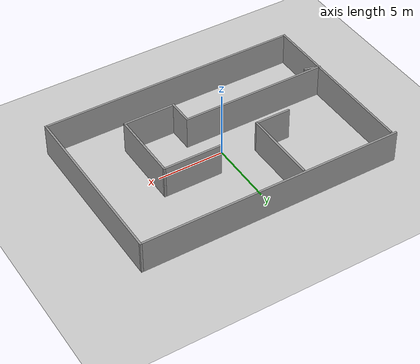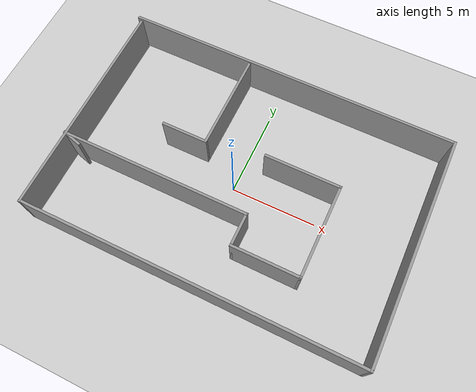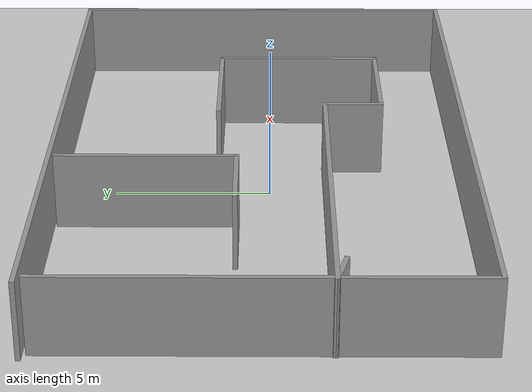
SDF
<sdf version="1.7">
 <world name="default">
  <light name="sun" type="directional">
   <pose>0 0 10 0 -0 0</pose>
   <diffuse>0.8 0.8 0.8 1</diffuse>
   <specular>0.2 0.2 0.2 1</specular>
   <attenuation>
    <range>1000</range>
    <constant>0.9</constant>
    <linear>0.01</linear>
    <quadratic>0.001</quadratic>
   </attenuation>
   <direction>-0.5 0.1 -0.9</direction>
   <spot><inner_angle>0</inner_angle><outer_angle>0</outer_angle><falloff>0</falloff></spot>
  </light>
  <model name="ground_plane">
   <static>1</static>
   <link name="link">
    <collision name="collision">
     <geometry><plane><normal>0 0 1</normal><size>100 100</size></plane></geometry>
     <surface>
      <contact><collide_bitmask>65535</collide_bitmask></contact>
      <friction><ode><mu>100</mu><mu2>50</mu2></ode></friction>
     </surface>
    </collision>
    <visual name="visual">
     <cast_shadows>0</cast_shadows>
     <geometry><plane><normal>0 0 1</normal><size>100 100</size></plane></geometry>
     <material>
      <script><uri>file://media/materials/scripts/gazebo.material</uri><name>Gazebo/Grey</name></script>
     </material>
    </visual>
   </link>
  </model>
  <gravity>0 0 -9.8</gravity>
  <magnetic_field>6e-06 2.3e-05 -4.2e-05</magnetic_field>
  <atmosphere type="adiabatic"/>
  <physics type="ode">
   <max_step_size>0.001</max_step_size>
   <real_time_factor>1</real_time_factor>
   <real_time_update_rate>1000</real_time_update_rate>
  </physics>
  <scene><ambient>0.4 0.4 0.4 1</ambient><background>0.7 0.7 0.7 1</background><shadows>1</shadows></scene>
  <audio><device>default</device></audio>
  <spherical_coordinates>
   <surface_model>EARTH_WGS84</surface_model>
   <latitude_deg>0</latitude_deg>
   <longitude_deg>0</longitude_deg>
   <elevation>0</elevation>
   <heading_deg>0</heading_deg>
  </spherical_coordinates>
  <model name="wall">
   <pose>0.291664 0.291965 0 0 -0 0</pose>
   <link name="Wall_10">
    <collision name="Wall_10_Collision">
     <geometry><box><size>20 0.15 2.5</size></box></geometry>
     <pose>0 0 1.25 0 -0 0</pose>
    </collision>
    <visual name="Wall_10_Visual">
     <pose>0 0 1.25 0 -0 0</pose>
     <geometry><box><size>20 0.15 2.5</size></box></geometry>
     <material>
      <script><uri>file://media/materials/scripts/gazebo.material</uri><name>Gazebo/Grey</name></script>
      <ambient>1 1 1 1</ambient>
     </material>
     <meta><layer>0</layer></meta>
    </visual>
    <pose>-0 6.55 0 0 -0 3.14159</pose>
   </link>
   <link name="Wall_12">
    <collision name="Wall_12_Collision">
     <geometry><box><size>5.75 0.15 2.5</size></box></geometry>
     <pose>0 0 1.25 0 -0 0</pose>
    </collision>
    <visual name="Wall_12_Visual">
     <pose>0 0 1.25 0 -0 0</pose>
     <geometry><box><size>5.75 0.15 2.5</size></box></geometry>
     <material>
      <script><uri>file://media/materials/scripts/gazebo.material</uri><name>Gazebo/Grey</name></script>
      <ambient>1 1 1 1</ambient>
     </material>
     <meta><layer>0</layer></meta>
    </visual>
    <pose>-2.46256 3.53969 0 0 -0 -1.5708</pose>
   </link>
   <link name="Wall_13">
    <collision name="Wall_13_Collision">
     <geometry><box><size>2.75 0.15 2.5</size></box></geometry>
     <pose>0 0 1.25 0 -0 0</pose>
    </collision>
    <visual name="Wall_13_Visual">
     <pose>0 0 1.25 0 -0 0</pose>
     <geometry><box><size>2.75 0.15 2.5</size></box></geometry>
     <material>
      <script><uri>file://media/materials/scripts/gazebo.material</uri><name>Gazebo/Grey</name></script>
      <ambient>1 1 1 1</ambient>
     </material>
     <meta><layer>0</layer></meta>
    </visual>
    <pose>-3.76256 0.73969 0 0 -0 3.14159</pose>
   </link>
   <link name="Wall_15">
    <collision name="Wall_15_Collision">
     <geometry><box><size>1.25 0.15 2.5</size></box></geometry>
     <pose>0 0 1.25 0 -0 0</pose>
    </collision>
    <visual name="Wall_15_Visual">
     <pose>0 0 1.25 0 -0 0</pose>
     <geometry><box><size>1.25 0.15 2.5</size></box></geometry>
     <material>
      <script><uri>file://media/materials/scripts/gazebo.material</uri><name>Gazebo/Grey</name></script>
      <ambient>1 1 1 1</ambient>
     </material>
     <meta><layer>0</layer></meta>
    </visual>
    <pose>-9.19344 -2.24637 0 0 -0 2.87979</pose>
   </link>
   <link name="Wall_16">
    <collision name="Wall_16_Collision">
     <geometry><box><size>11.25 0.15 2.5</size></box></geometry>
     <pose>0 0 1.25 0 -0 0</pose>
    </collision>
    <visual name="Wall_16_Visual">
     <pose>0 0 1.25 0 -0 0</pose>
     <geometry><box><size>11.25 0.15 2.5</size></box></geometry>
     <material>
      <script><uri>file://media/materials/scripts/gazebo.material</uri><name>Gazebo/Grey</name></script>
      <ambient>1 1 1 1</ambient>
     </material>
     <meta><layer>0</layer></meta>
    </visual>
    <pose>-4.1747 -2.10402 0 0 -0 0</pose>
   </link>
   <link name="Wall_17">
    <collision name="Wall_17_Collision">
     <geometry><box><size>2 0.15 2.5</size></box></geometry>
     <pose>0 0 1.25 0 -0 0</pose>
    </collision>
    <visual name="Wall_17_Visual">
     <pose>0 0 1.25 0 -0 0</pose>
     <geometry><box><size>2 0.15 2.5</size></box></geometry>
     <material>
      <script><uri>file://media/materials/scripts/gazebo.material</uri><name>Gazebo/Grey</name></script>
      <ambient>1 1 1 1</ambient>
     </material>
     <meta><layer>0</layer></meta>
    </visual>
    <pose>1.3753 -3.02902 0 0 -0 -1.5708</pose>
   </link>
   <link name="Wall_18">
    <collision name="Wall_18_Collision">
     <geometry><box><size>4 0.15 2.5</size></box></geometry>
     <pose>0 0 1.25 0 -0 0</pose>
    </collision>
    <visual name="Wall_18_Visual">
     <pose>0 0 1.25 0 -0 0</pose>
     <geometry><box><size>4 0.15 2.5</size></box></geometry>
     <material>
      <script><uri>file://media/materials/scripts/gazebo.material</uri><name>Gazebo/Grey</name></script>
      <ambient>1 1 1 1</ambient>
     </material>
     <meta><layer>0</layer></meta>
    </visual>
    <pose>3.3003 -3.95402 0 0 -0 0</pose>
   </link>
   <link name="Wall_19">
    <collision name="Wall_19_Collision">
     <geometry><box><size>5.5 0.15 2.5</size></box></geometry>
     <pose>0 0 1.25 0 -0 0</pose>
    </collision>
    <visual name="Wall_19_Visual">
     <pose>0 0 1.25 0 -0 0</pose>
     <geometry><box><size>5.5 0.15 2.5</size></box></geometry>
     <material>
      <script><uri>file://media/materials/scripts/gazebo.material</uri><name>Gazebo/Grey</name></script>
      <ambient>1 1 1 1</ambient>
     </material>
     <meta><layer>0</layer></meta>
    </visual>
    <pose>5.2253 -1.27902 0 0 -0 1.5708</pose>
   </link>
   <link name="Wall_20">
    <collision name="Wall_20_Collision">
     <geometry><box><size>4.5 0.15 2.5</size></box></geometry>
     <pose>0 0 1.25 0 -0 0</pose>
    </collision>
    <visual name="Wall_20_Visual">
     <pose>0 0 1.25 0 -0 0</pose>
     <geometry><box><size>4.5 0.15 2.5</size></box></geometry>
     <material>
      <script><uri>file://media/materials/scripts/gazebo.material</uri><name>Gazebo/Grey</name></script>
      <ambient>1 1 1 1</ambient>
     </material>
     <meta><layer>0</layer></meta>
    </visual>
    <pose>3.0503 1.39598 0 0 -0 3.14159</pose>
   </link>
   <link name="Wall_7">
    <collision name="Wall_7_Collision">
     <geometry><box><size>13 0.15 2.5</size></box></geometry>
     <pose>0 0 1.25 0 -0 0</pose>
    </collision>
    <visual name="Wall_7_Visual">
     <pose>0 0 1.25 0 -0 0</pose>
     <geometry><box><size>13 0.15 2.5</size></box></geometry>
     <material>
      <script><uri>file://media/materials/scripts/gazebo.material</uri><name>Gazebo/Grey</name></script>
      <ambient>1 1 1 1</ambient>
     </material>
     <meta><layer>0</layer></meta>
    </visual>
    <pose>-9.675 -0.125 0 0 -0 -1.5708</pose>
   </link>
   <link name="Wall_8">
    <collision name="Wall_8_Collision">
     <geometry><box><size>19.75 0.15 2.5</size></box></geometry>
     <pose>0 0 1.25 0 -0 0</pose>
    </collision>
    <visual name="Wall_8_Visual">
     <pose>0 0 1.25 0 -0 0</pose>
     <geometry><box><size>19.75 0.15 2.5</size></box></geometry>
     <material>
      <script><uri>file://media/materials/scripts/gazebo.material</uri><name>Gazebo/Grey</name></script>
      <ambient>1 1 1 1</ambient>
     </material>
     <meta><layer>0</layer></meta>
    </visual>
    <pose>0.125 -6.55 0 0 -0 0</pose>
   </link>
   <link name="Wall_9">
    <collision name="Wall_9_Collision">
     <geometry><box><size>13.25 0.15 2.5</size></box></geometry>
     <pose>0 0 1.25 0 -0 0</pose>
    </collision>
    <visual name="Wall_9_Visual">
     <pose>0 0 1.25 0 -0 0</pose>
     <geometry><box><size>13.25 0.15 2.5</size></box></geometry>
     <material>
      <script><uri>file://media/materials/scripts/gazebo.material</uri><name>Gazebo/Grey</name></script>
      <ambient>1 1 1 1</ambient>
     </material>
     <meta><layer>0</layer></meta>
    </visual>
    <pose>9.925 -0 0 0 -0 1.5708</pose>
   </link>
   <static>1</static>
  </model>
 </world>
</sdf>
